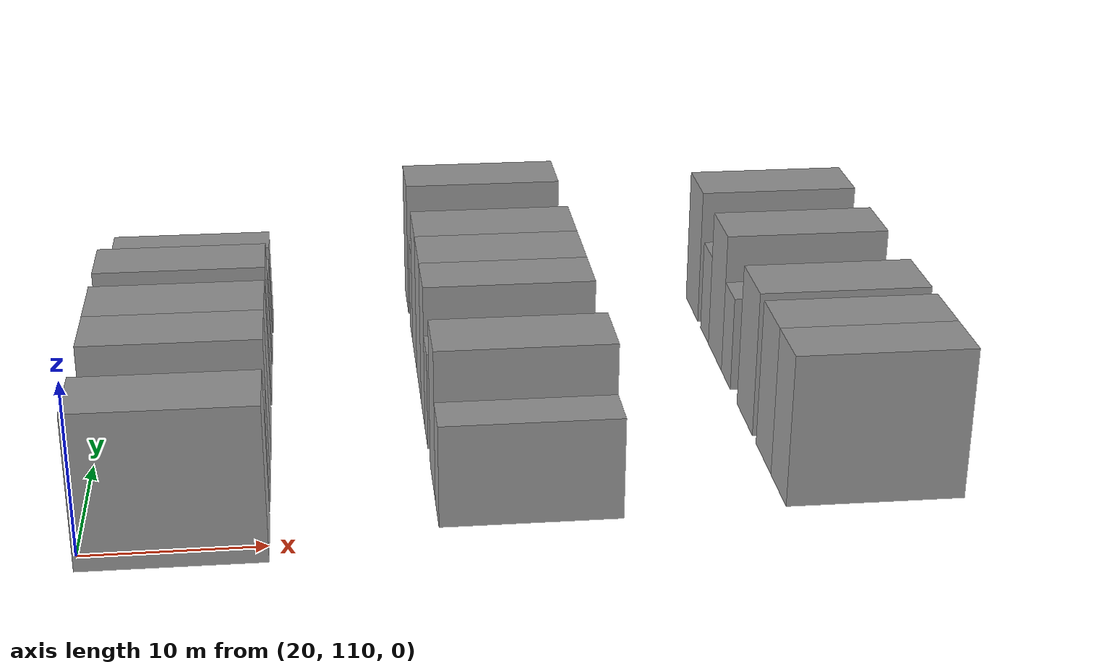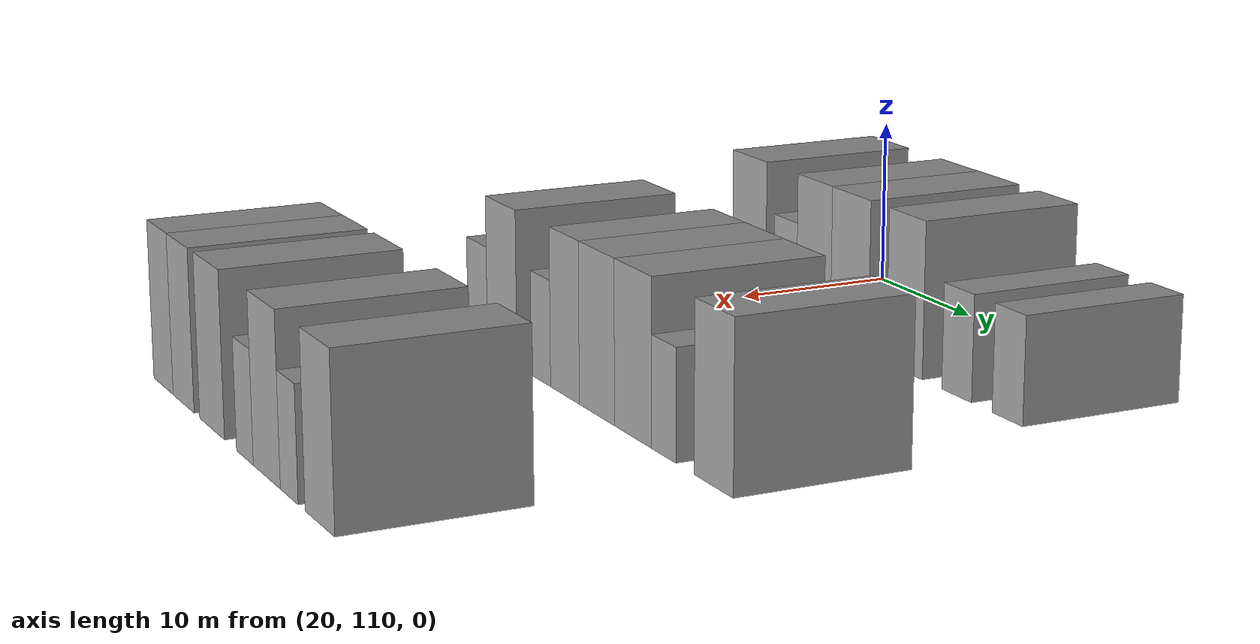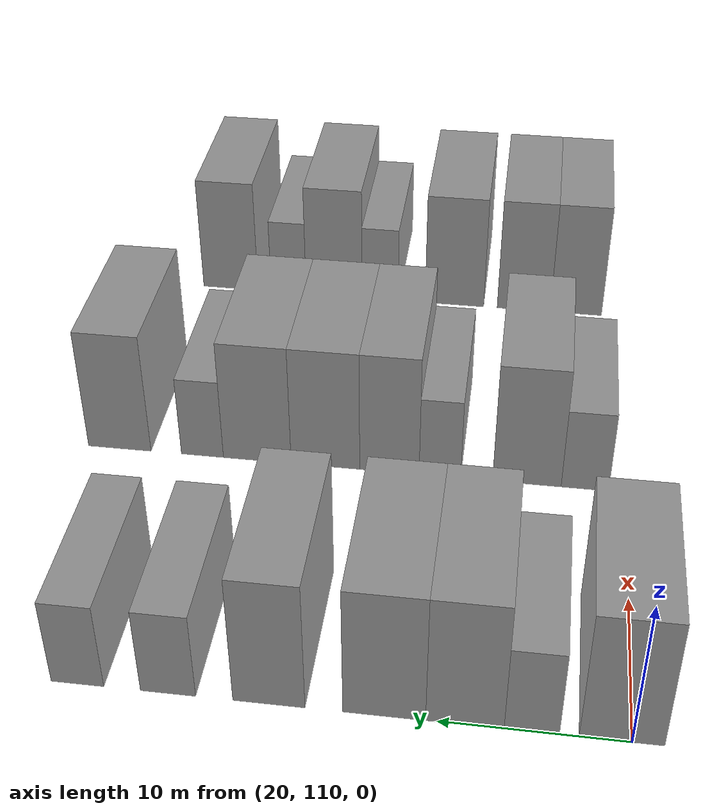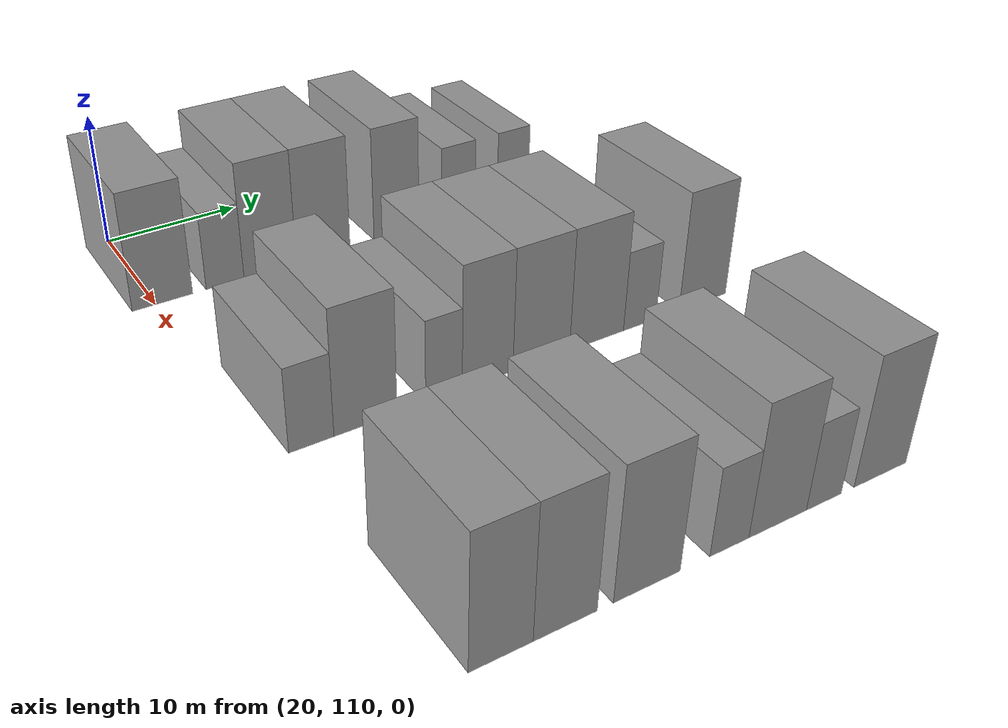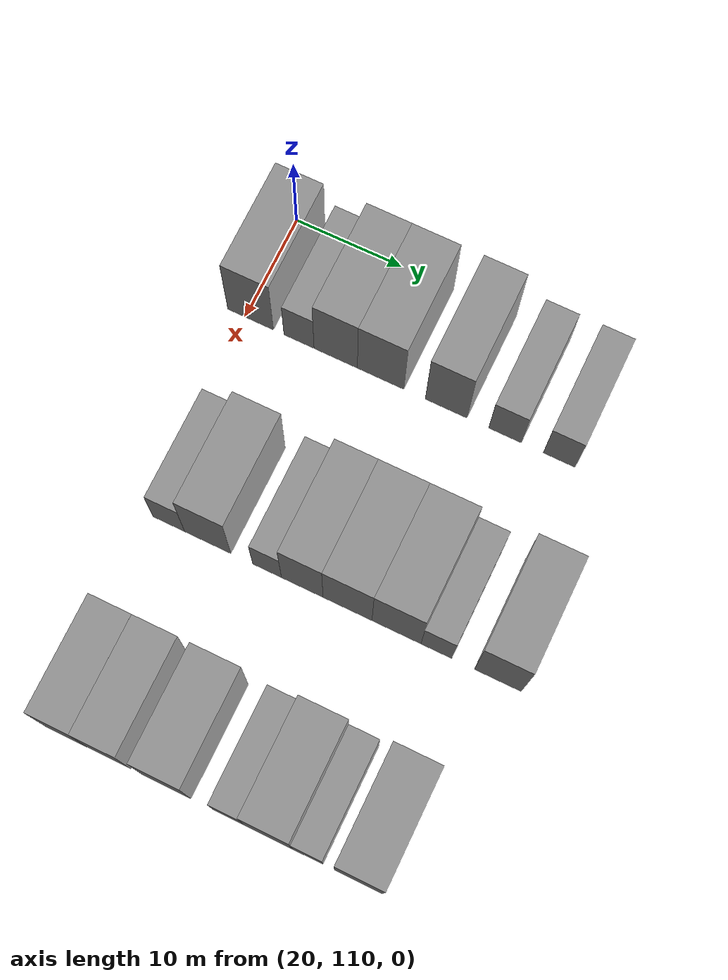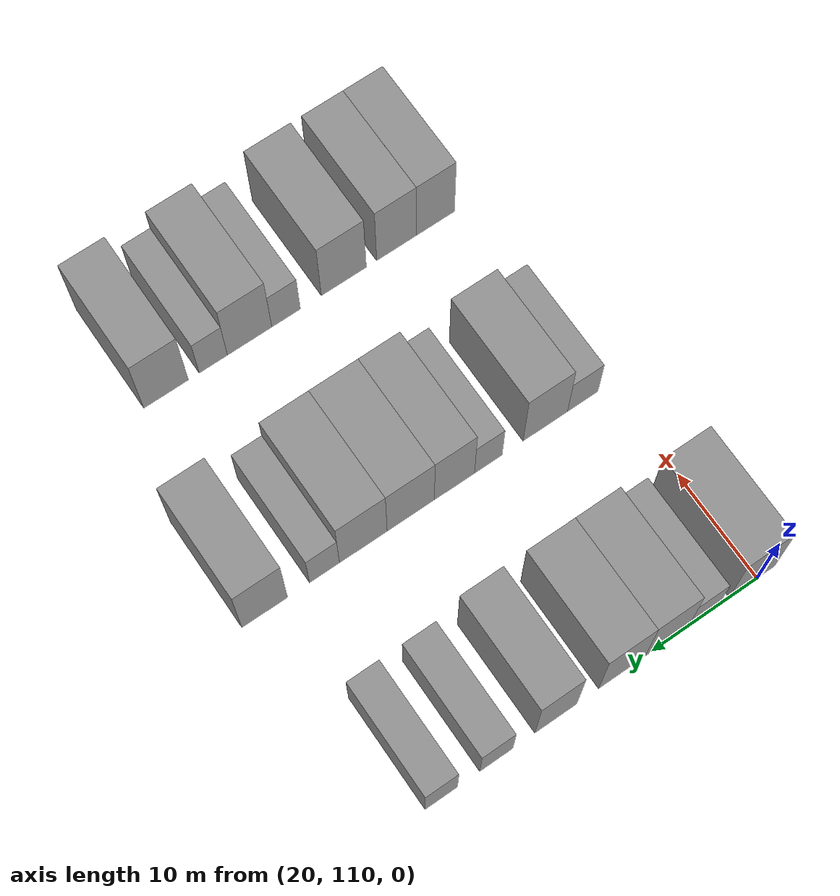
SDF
<sdf version="1.6">
 <world name="default">
  <model name="building_88">
   <static>1</static>
   <pose>25.0000 110.5230 0 0.000000 0.000000 0.000000</pose>
   <link name="link">
    <pose>0 0 4.50 0 0 0</pose>
    <collision name="collision"><geometry><box><size>10.0000 4.3455 9.0000</size></box></geometry></collision>
    <visual name="visual">
     <cast_shadows>0</cast_shadows>
     <geometry><box><size>10.0000 4.3455 9.0000</size></box></geometry>
     <material>
      <script>
       <uri>model://grey_wall/materials/scripts</uri>
       <uri>model://grey_wall/materials/textures</uri>
       <name>vrc/grey_wall</name>
      </script>
     </material>
    </visual>
   </link>
  </model>
  <model name="building_89">
   <static>1</static>
   <pose>25.0000 115.1165 0 0.000000 0.000000 0.000000</pose>
   <link name="link">
    <pose>0 0 3.00 0 0 0</pose>
    <collision name="collision"><geometry><box><size>10.0000 2.8415 6.0000</size></box></geometry></collision>
    <visual name="visual">
     <cast_shadows>0</cast_shadows>
     <geometry><box><size>10.0000 2.8415 6.0000</size></box></geometry>
     <material>
      <script>
       <uri>model://grey_wall/materials/scripts</uri>
       <uri>model://grey_wall/materials/textures</uri>
       <name>vrc/grey_wall</name>
      </script>
     </material>
    </visual>
   </link>
  </model>
  <model name="building_90">
   <static>1</static>
   <pose>25.0000 118.5710 0 0.000000 0.000000 0.000000</pose>
   <link name="link">
    <pose>0 0 4.50 0 0 0</pose>
    <collision name="collision"><geometry><box><size>10.0000 4.0676 9.0000</size></box></geometry></collision>
    <visual name="visual">
     <cast_shadows>0</cast_shadows>
     <geometry><box><size>10.0000 4.0676 9.0000</size></box></geometry>
     <material>
      <script>
       <uri>model://grey_wall/materials/scripts</uri>
       <uri>model://grey_wall/materials/textures</uri>
       <name>vrc/grey_wall</name>
      </script>
     </material>
    </visual>
   </link>
  </model>
  <model name="building_91">
   <static>1</static>
   <pose>25.0000 122.7736 0 0.000000 0.000000 0.000000</pose>
   <link name="link">
    <pose>0 0 4.50 0 0 0</pose>
    <collision name="collision"><geometry><box><size>10.0000 4.3375 9.0000</size></box></geometry></collision>
    <visual name="visual">
     <cast_shadows>0</cast_shadows>
     <geometry><box><size>10.0000 4.3375 9.0000</size></box></geometry>
     <material>
      <script>
       <uri>model://grey_wall/materials/scripts</uri>
       <uri>model://grey_wall/materials/textures</uri>
       <name>vrc/grey_wall</name>
      </script>
     </material>
    </visual>
   </link>
  </model>
  <model name="building_92">
   <static>1</static>
   <pose>25.0000 128.8661 0 0.000000 0.000000 0.000000</pose>
   <link name="link">
    <pose>0 0 4.50 0 0 0</pose>
    <collision name="collision"><geometry><box><size>10.0000 3.8475 9.0000</size></box></geometry></collision>
    <visual name="visual">
     <cast_shadows>0</cast_shadows>
     <geometry><box><size>10.0000 3.8475 9.0000</size></box></geometry>
     <material>
      <script>
       <uri>model://grey_wall/materials/scripts</uri>
       <uri>model://grey_wall/materials/textures</uri>
       <name>vrc/grey_wall</name>
      </script>
     </material>
    </visual>
   </link>
  </model>
  <model name="building_93">
   <static>1</static>
   <pose>25.0000 134.2841 0 0.000000 0.000000 0.000000</pose>
   <link name="link">
    <pose>0 0 3.00 0 0 0</pose>
    <collision name="collision"><geometry><box><size>10.0000 2.9885 6.0000</size></box></geometry></collision>
    <visual name="visual">
     <cast_shadows>0</cast_shadows>
     <geometry><box><size>10.0000 2.9885 6.0000</size></box></geometry>
     <material>
      <script>
       <uri>model://grey_wall/materials/scripts</uri>
       <uri>model://grey_wall/materials/textures</uri>
       <name>vrc/grey_wall</name>
      </script>
     </material>
    </visual>
   </link>
  </model>
  <model name="building_94">
   <static>1</static>
   <pose>25.0000 139.2223 0 0.000000 0.000000 0.000000</pose>
   <link name="link">
    <pose>0 0 3.00 0 0 0</pose>
    <collision name="collision"><geometry><box><size>10.0000 2.8879 6.0000</size></box></geometry></collision>
    <visual name="visual">
     <cast_shadows>0</cast_shadows>
     <geometry><box><size>10.0000 2.8879 6.0000</size></box></geometry>
     <material>
      <script>
       <uri>model://grey_wall/materials/scripts</uri>
       <uri>model://grey_wall/materials/textures</uri>
       <name>vrc/grey_wall</name>
      </script>
     </material>
    </visual>
   </link>
  </model>
  <model name="building_206">
   <static>1</static>
   <pose>44.0000 112.5566 0 0.000000 0.000000 0.000000</pose>
   <link name="link">
    <pose>0 0 3.00 0 0 0</pose>
    <collision name="collision"><geometry><box><size>10.0000 2.9282 6.0000</size></box></geometry></collision>
    <visual name="visual">
     <cast_shadows>0</cast_shadows>
     <geometry><box><size>10.0000 2.9282 6.0000</size></box></geometry>
     <material>
      <script>
       <uri>model://grey_wall/materials/scripts</uri>
       <uri>model://grey_wall/materials/textures</uri>
       <name>vrc/grey_wall</name>
      </script>
     </material>
    </visual>
   </link>
  </model>
  <model name="building_207">
   <static>1</static>
   <pose>44.0000 116.1484 0 0.000000 0.000000 0.000000</pose>
   <link name="link">
    <pose>0 0 4.50 0 0 0</pose>
    <collision name="collision"><geometry><box><size>10.0000 4.2554 9.0000</size></box></geometry></collision>
    <visual name="visual">
     <cast_shadows>0</cast_shadows>
     <geometry><box><size>10.0000 4.2554 9.0000</size></box></geometry>
     <material>
      <script>
       <uri>model://grey_wall/materials/scripts</uri>
       <uri>model://grey_wall/materials/textures</uri>
       <name>vrc/grey_wall</name>
      </script>
     </material>
    </visual>
   </link>
  </model>
  <model name="building_208">
   <static>1</static>
   <pose>44.0000 121.5848 0 0.000000 0.000000 0.000000</pose>
   <link name="link">
    <pose>0 0 3.00 0 0 0</pose>
    <collision name="collision"><geometry><box><size>10.0000 2.6173 6.0000</size></box></geometry></collision>
    <visual name="visual">
     <cast_shadows>0</cast_shadows>
     <geometry><box><size>10.0000 2.6173 6.0000</size></box></geometry>
     <material>
      <script>
       <uri>model://grey_wall/materials/scripts</uri>
       <uri>model://grey_wall/materials/textures</uri>
       <name>vrc/grey_wall</name>
      </script>
     </material>
    </visual>
   </link>
  </model>
  <model name="building_209">
   <static>1</static>
   <pose>44.0000 124.7767 0 0.000000 0.000000 0.000000</pose>
   <link name="link">
    <pose>0 0 4.50 0 0 0</pose>
    <collision name="collision"><geometry><box><size>10.0000 3.7666 9.0000</size></box></geometry></collision>
    <visual name="visual">
     <cast_shadows>0</cast_shadows>
     <geometry><box><size>10.0000 3.7666 9.0000</size></box></geometry>
     <material>
      <script>
       <uri>model://grey_wall/materials/scripts</uri>
       <uri>model://grey_wall/materials/textures</uri>
       <name>vrc/grey_wall</name>
      </script>
     </material>
    </visual>
   </link>
  </model>
  <model name="building_210">
   <static>1</static>
   <pose>44.0000 128.8547 0 0.000000 0.000000 0.000000</pose>
   <link name="link">
    <pose>0 0 4.50 0 0 0</pose>
    <collision name="collision"><geometry><box><size>10.0000 4.3894 9.0000</size></box></geometry></collision>
    <visual name="visual">
     <cast_shadows>0</cast_shadows>
     <geometry><box><size>10.0000 4.3894 9.0000</size></box></geometry>
     <material>
      <script>
       <uri>model://grey_wall/materials/scripts</uri>
       <uri>model://grey_wall/materials/textures</uri>
       <name>vrc/grey_wall</name>
      </script>
     </material>
    </visual>
   </link>
  </model>
  <model name="building_211">
   <static>1</static>
   <pose>44.0000 133.2409 0 0.000000 0.000000 0.000000</pose>
   <link name="link">
    <pose>0 0 4.50 0 0 0</pose>
    <collision name="collision"><geometry><box><size>10.0000 4.3830 9.0000</size></box></geometry></collision>
    <visual name="visual">
     <cast_shadows>0</cast_shadows>
     <geometry><box><size>10.0000 4.3830 9.0000</size></box></geometry>
     <material>
      <script>
       <uri>model://grey_wall/materials/scripts</uri>
       <uri>model://grey_wall/materials/textures</uri>
       <name>vrc/grey_wall</name>
      </script>
     </material>
    </visual>
   </link>
  </model>
  <model name="building_212">
   <static>1</static>
   <pose>44.0000 136.7989 0 0.000000 0.000000 0.000000</pose>
   <link name="link">
    <pose>0 0 3.00 0 0 0</pose>
    <collision name="collision"><geometry><box><size>10.0000 2.7330 6.0000</size></box></geometry></collision>
    <visual name="visual">
     <cast_shadows>0</cast_shadows>
     <geometry><box><size>10.0000 2.7330 6.0000</size></box></geometry>
     <material>
      <script>
       <uri>model://grey_wall/materials/scripts</uri>
       <uri>model://grey_wall/materials/textures</uri>
       <name>vrc/grey_wall</name>
      </script>
     </material>
    </visual>
   </link>
  </model>
  <model name="building_213">
   <static>1</static>
   <pose>44.0000 142.2242 0 0.000000 0.000000 0.000000</pose>
   <link name="link">
    <pose>0 0 4.50 0 0 0</pose>
    <collision name="collision"><geometry><box><size>10.0000 4.1176 9.0000</size></box></geometry></collision>
    <visual name="visual">
     <cast_shadows>0</cast_shadows>
     <geometry><box><size>10.0000 4.1176 9.0000</size></box></geometry>
     <material>
      <script>
       <uri>model://grey_wall/materials/scripts</uri>
       <uri>model://grey_wall/materials/textures</uri>
       <name>vrc/grey_wall</name>
      </script>
     </material>
    </visual>
   </link>
  </model>
  <model name="building_321">
   <static>1</static>
   <pose>63.0000 113.3591 0 0.000000 0.000000 0.000000</pose>
   <link name="link">
    <pose>0 0 4.50 0 0 0</pose>
    <collision name="collision"><geometry><box><size>10.0000 3.7141 9.0000</size></box></geometry></collision>
    <visual name="visual">
     <cast_shadows>0</cast_shadows>
     <geometry><box><size>10.0000 3.7141 9.0000</size></box></geometry>
     <material>
      <script>
       <uri>model://grey_wall/materials/scripts</uri>
       <uri>model://grey_wall/materials/textures</uri>
       <name>vrc/grey_wall</name>
      </script>
     </material>
    </visual>
   </link>
  </model>
  <model name="building_322">
   <static>1</static>
   <pose>63.0000 117.1495 0 0.000000 0.000000 0.000000</pose>
   <link name="link">
    <pose>0 0 4.50 0 0 0</pose>
    <collision name="collision"><geometry><box><size>10.0000 3.8665 9.0000</size></box></geometry></collision>
    <visual name="visual">
     <cast_shadows>0</cast_shadows>
     <geometry><box><size>10.0000 3.8665 9.0000</size></box></geometry>
     <material>
      <script>
       <uri>model://grey_wall/materials/scripts</uri>
       <uri>model://grey_wall/materials/textures</uri>
       <name>vrc/grey_wall</name>
      </script>
     </material>
    </visual>
   </link>
  </model>
  <model name="building_323">
   <static>1</static>
   <pose>63.0000 122.2404 0 0.000000 0.000000 0.000000</pose>
   <link name="link">
    <pose>0 0 4.50 0 0 0</pose>
    <collision name="collision"><geometry><box><size>10.0000 4.3155 9.0000</size></box></geometry></collision>
    <visual name="visual">
     <cast_shadows>0</cast_shadows>
     <geometry><box><size>10.0000 4.3155 9.0000</size></box></geometry>
     <material>
      <script>
       <uri>model://grey_wall/materials/scripts</uri>
       <uri>model://grey_wall/materials/textures</uri>
       <name>vrc/grey_wall</name>
      </script>
     </material>
    </visual>
   </link>
  </model>
  <model name="building_324">
   <static>1</static>
   <pose>63.0000 127.7520 0 0.000000 0.000000 0.000000</pose>
   <link name="link">
    <pose>0 0 3.00 0 0 0</pose>
    <collision name="collision"><geometry><box><size>10.0000 2.7075 6.0000</size></box></geometry></collision>
    <visual name="visual">
     <cast_shadows>0</cast_shadows>
     <geometry><box><size>10.0000 2.7075 6.0000</size></box></geometry>
     <material>
      <script>
       <uri>model://grey_wall/materials/scripts</uri>
       <uri>model://grey_wall/materials/textures</uri>
       <name>vrc/grey_wall</name>
      </script>
     </material>
    </visual>
   </link>
  </model>
  <model name="building_325">
   <static>1</static>
   <pose>63.0000 131.1957 0 0.000000 0.000000 0.000000</pose>
   <link name="link">
    <pose>0 0 4.50 0 0 0</pose>
    <collision name="collision"><geometry><box><size>10.0000 4.1800 9.0000</size></box></geometry></collision>
    <visual name="visual">
     <cast_shadows>0</cast_shadows>
     <geometry><box><size>10.0000 4.1800 9.0000</size></box></geometry>
     <material>
      <script>
       <uri>model://grey_wall/materials/scripts</uri>
       <uri>model://grey_wall/materials/textures</uri>
       <name>vrc/grey_wall</name>
      </script>
     </material>
    </visual>
   </link>
  </model>
  <model name="building_326">
   <static>1</static>
   <pose>63.0000 134.6030 0 0.000000 0.000000 0.000000</pose>
   <link name="link">
    <pose>0 0 3.00 0 0 0</pose>
    <collision name="collision"><geometry><box><size>10.0000 2.6346 6.0000</size></box></geometry></collision>
    <visual name="visual">
     <cast_shadows>0</cast_shadows>
     <geometry><box><size>10.0000 2.6346 6.0000</size></box></geometry>
     <material>
      <script>
       <uri>model://grey_wall/materials/scripts</uri>
       <uri>model://grey_wall/materials/textures</uri>
       <name>vrc/grey_wall</name>
      </script>
     </material>
    </visual>
   </link>
  </model>
  <model name="building_327">
   <static>1</static>
   <pose>63.0000 138.9856 0 0.000000 0.000000 0.000000</pose>
   <link name="link">
    <pose>0 0 4.50 0 0 0</pose>
    <collision name="collision"><geometry><box><size>10.0000 4.1306 9.0000</size></box></geometry></collision>
    <visual name="visual">
     <cast_shadows>0</cast_shadows>
     <geometry><box><size>10.0000 4.1306 9.0000</size></box></geometry>
     <material>
      <script>
       <uri>model://grey_wall/materials/scripts</uri>
       <uri>model://grey_wall/materials/textures</uri>
       <name>vrc/grey_wall</name>
      </script>
     </material>
    </visual>
   </link>
  </model>
 </world>
</sdf>
